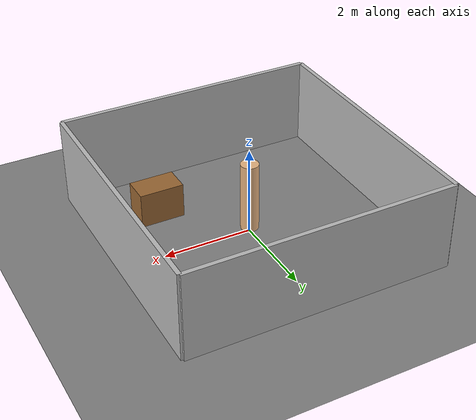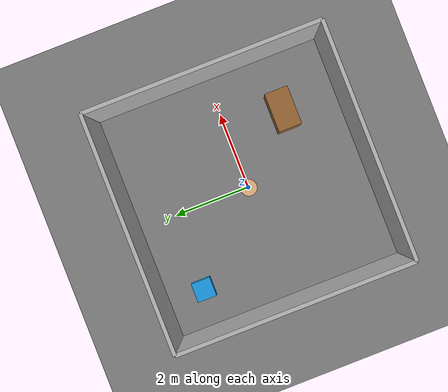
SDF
<?xml version="1.0"?>
<sdf version="1.7">
  <world name="happy_care_room">
    <light name="sun" type="directional">
      <cast_shadows>true</cast_shadows>
      <pose>0 0 10 0 0 0</pose>
      <diffuse>0.8 0.8 0.8 1</diffuse>
      <specular>0.2 0.2 0.2 1</specular>
      <direction>-0.5 0.1 -0.9</direction>
    </light>

    <model name="ground_plane">
      <static>true</static>
      <link name="link">
        <collision name="collision">
          <geometry><plane><normal>0 0 1</normal><size>10 10</size></plane></geometry>
        </collision>
        <visual name="visual">
          <geometry><plane><normal>0 0 1</normal><size>10 10</size></plane></geometry>
          <material><ambient>0.5 0.5 0.5 1</ambient></material>
        </visual>
      </link>
    </model>

    <physics type="ode">
      <real_time_update_rate>1000.0</real_time_update_rate>
    </physics>

    <model name="wall_north">
      <static>true</static>
      <pose>0 3 1 0 0 0</pose>
      <link name="link">
        <collision name="collision"><geometry><box><size>6 0.1 2</size></box></geometry></collision>
        <visual name="visual"><geometry><box><size>6 0.1 2</size></box></geometry></visual>
      </link>
    </model>
    <model name="wall_south">
      <static>true</static>
      <pose>0 -3 1 0 0 0</pose>
      <link name="link">
        <collision name="collision"><geometry><box><size>6 0.1 2</size></box></geometry></collision>
        <visual name="visual"><geometry><box><size>6 0.1 2</size></box></geometry></visual>
      </link>
    </model>
    <model name="wall_east">
      <static>true</static>
      <pose>3 0 1 0 0 1.5708</pose>
      <link name="link">
        <collision name="collision"><geometry><box><size>6 0.1 2</size></box></geometry></collision>
        <visual name="visual"><geometry><box><size>6 0.1 2</size></box></geometry></visual>
      </link>
    </model>
    <model name="wall_west">
      <static>true</static>
      <pose>-3 0 1 0 0 1.5708</pose>
      <link name="link">
        <collision name="collision"><geometry><box><size>6 0.1 2</size></box></geometry></collision>
        <visual name="visual"><geometry><box><size>6 0.1 2</size></box></geometry></visual>
      </link>
    </model>

    <model name="furniture_table">
      <static>true</static>
      <pose>1.5 -1.5 0.4 0 0 0</pose>
      <link name="link">
        <collision name="collision"><geometry><box><size>1 0.6 0.8</size></box></geometry></collision>
        <visual name="visual">
          <geometry><box><size>1 0.6 0.8</size></box></geometry>
          <material><ambient>0.6 0.4 0.2 1</ambient></material>
        </visual>
      </link>
    </model>

    <model name="charging_station">
      <static>true</static>
      <pose>-2 2 0.15 0 0 0</pose>
      <link name="link">
        <collision name="collision"><geometry><box><size>0.5 0.5 0.3</size></box></geometry></collision>
        <visual name="visual">
          <geometry><box><size>0.5 0.5 0.3</size></box></geometry>
          <material><ambient>0.1 0.6 0.9 1</ambient></material>
        </visual>
      </link>
    </model>

    <model name="person">
      <static>true</static>
      <pose>0 0 0.9 0 0 0</pose>
      <link name="link">
        <collision name="collision"><geometry><cylinder><radius>0.2</radius><length>1.6</length></cylinder></geometry></collision>
        <visual name="visual">
          <geometry><cylinder><radius>0.2</radius><length>1.6</length></cylinder></geometry>
          <material><ambient>0.9 0.7 0.5 1</ambient></material>
        </visual>
      </link>
    </model>

    <plugin name="happy_care_world_plugin" filename="libhappy_care_world_plugin.so">
      <ros></ros>
      <robot_model>haengbogi</robot_model>
      <station_model>charging_station</station_model>
      <person_model>person</person_model>
    </plugin>
  </world>
</sdf>
